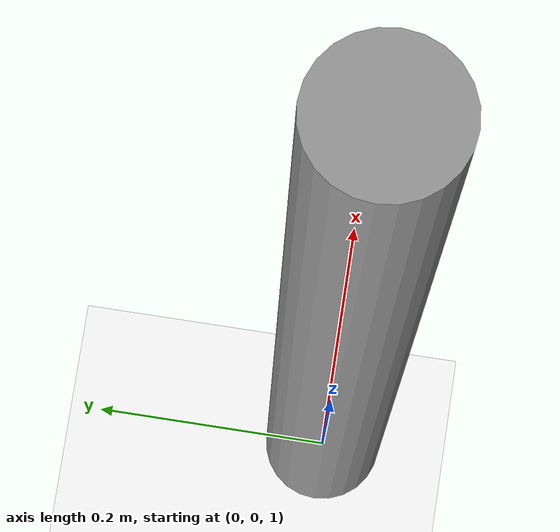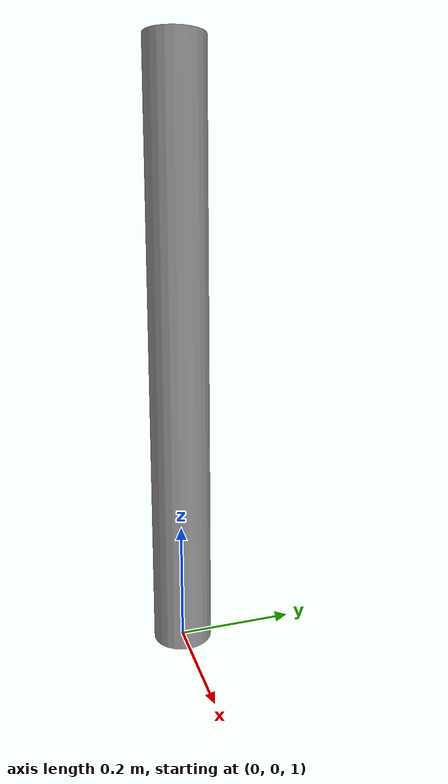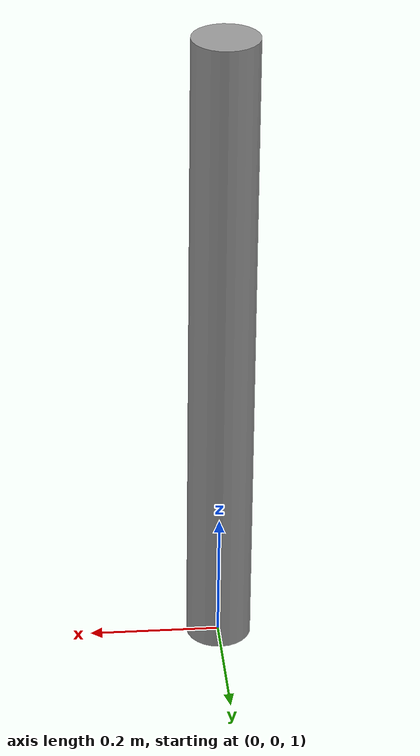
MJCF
<mujoco model="simple_robot">
  <compiler angle="radian"/>

  <asset>
    <texture type="2d" name="groundplane" builtin="checker" mark="edge" rgb1="1 1 1" rgb2="1 1 1" markrgb="0 0 0"
      width="300" height="300"/>
    <material name="groundplane" texture="groundplane" texuniform="true" texrepeat="5 5" reflectance="0"/>
  </asset>

  <worldbody>
    <geom name="floor" size="100 100 0.01" type="box" material="groundplane" contype="1" conaffinity="1" priority="1"
      friction="1.0 0.001 0.001" condim="3" solimp="0.9 0.95 0.01" solref="0.02 1"/>
    <light diffuse=".5 .5 .5" pos="-3 -3 5" dir="3 3 -5" castshadow="true"/>

    <!-- 固定基座 -->
    <body name="base" pos="0 0 0">

      <!-- 旋转连杆 -->
      <body name="link1" pos="0 0 1.0">
        <joint name="joint1" pos="0 0 0.0" axis="0 1 0" range="-1.2 1.2"/>
        <inertial pos="0 0 0.5" mass="1.0" fullinertia="0.02 0.02 0.001 0.0 0.0 0.0"/>
        <geom type="cylinder" size="0.05 0.5" pos="0 0 0.5" rgba="0.6 0.6 0.6 1.0"/>
      </body>

    </body>

  </worldbody>

  <actuator>
    <motor name="joint1" joint="joint1"/>
  </actuator>

</mujoco>
